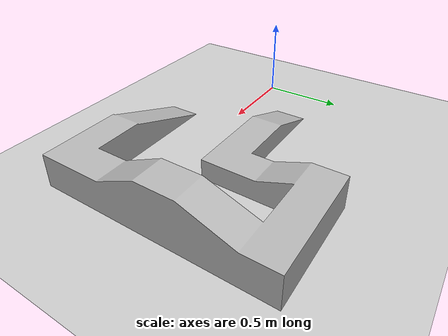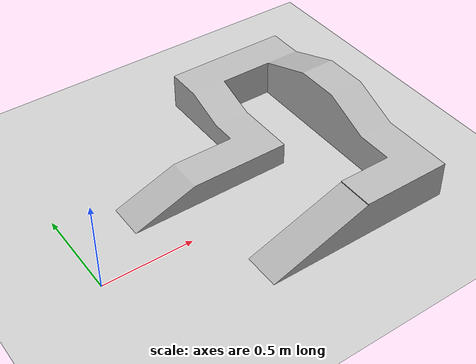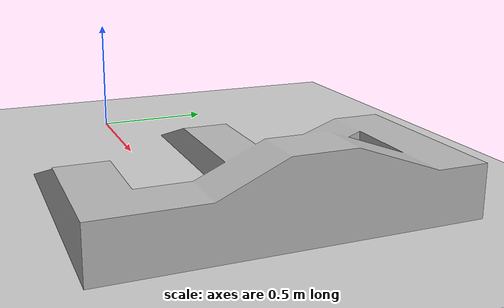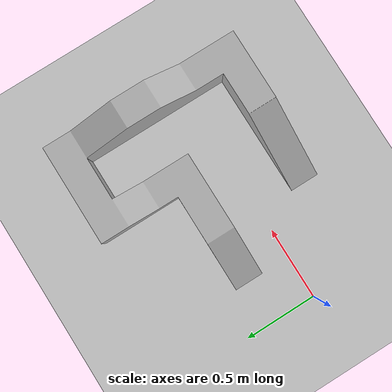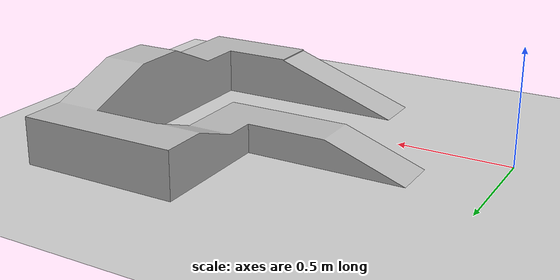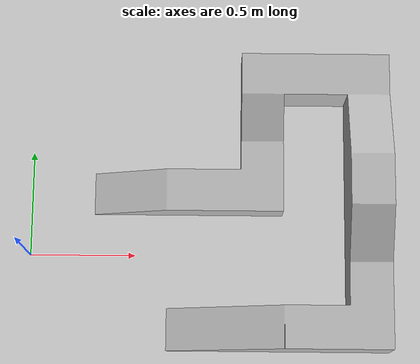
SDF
<?xml version="1.0"?>
<sdf version="1.6">
  <world name="default">
    <include>
      <uri>model://ground_plane</uri>
    </include>
    <include>
      <uri>model://sun</uri>
    </include>
    <include>
      <uri>model://maze</uri>
      <pose>0.3 0.3 0.0 0 0 0</pose>
    </include>
  </world>
</sdf>

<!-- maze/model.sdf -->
<sdf version="1.5">
  <model name="maze">
    <link name="link">
      <inertial>
        <pose>0 0 0 0 0 0</pose>
        <mass>80.0</mass>
        <inertia>
          <ixx>24.88</ixx>
          <ixy>0</ixy>
          <ixz>0</ixz>
          <iyy>25.73</iyy>
          <iyz>0</iyz>
          <izz>2.48</izz>
        </inertia>
      </inertial>

      <collision name="collision">
        <pose>0 0 0 1.5707963 0 -1.5707963</pose>
        <geometry>
          <mesh>
            <uri>model://maze/meshes/maze.stl</uri>
            <scale>0.005 0.005 0.005</scale>
          </mesh>
        </geometry>
      </collision>

      <visual name="visual">
        <pose>0 0 0 1.5707963 0 -1.5707963</pose>
        <geometry>
          <mesh>
            <uri>model://maze/meshes/maze.stl</uri>
            <scale>0.005 0.005 0.005</scale>
          </mesh>
        </geometry>
      </visual>
    </link>
  </model>
</sdf>
